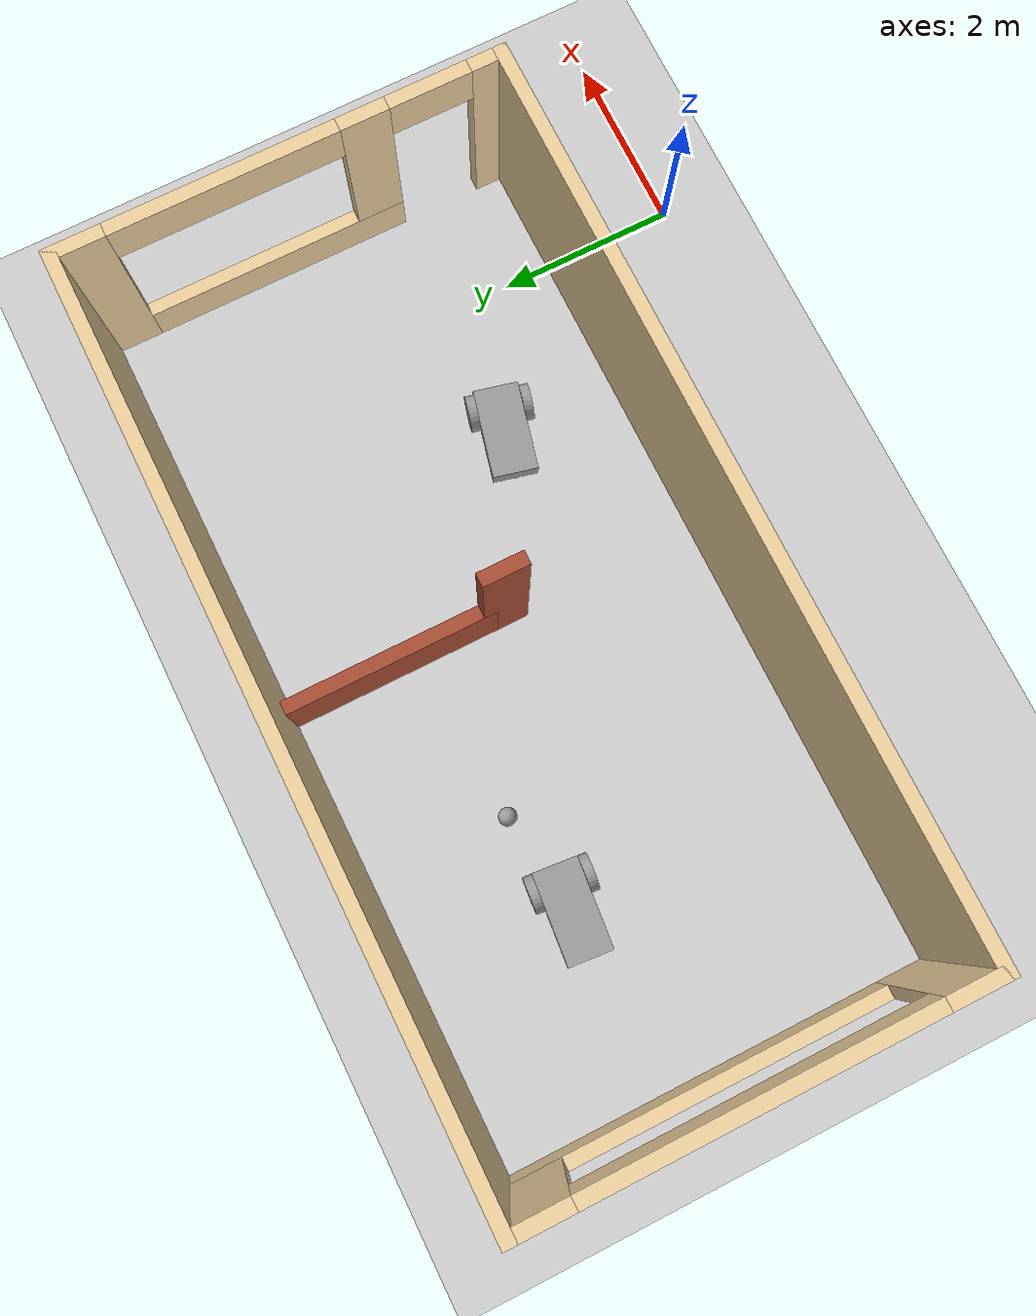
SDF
<sdf version="1.6">
 <world name="default">
  <plugin name="hello" filename="libhello.so"/>
  <light name="sun" type="directional">
   <pose>0 0 10 0 -0 0</pose>
   <diffuse>0.8 0.8 0.8 1</diffuse>
   <specular>0.2 0.2 0.2 1</specular>
   <attenuation>
    <range>1000</range>
    <constant>0.9</constant>
    <linear>0.01</linear>
    <quadratic>0.001</quadratic>
   </attenuation>
   <direction>-0.5 0.1 -0.9</direction>
  </light>
  <model name="ground_plane">
   <static>1</static>
   <link name="link">
    <collision name="collision">
     <geometry><plane><normal>0 0 1</normal><size>100 100</size></plane></geometry>
     <surface>
      <contact><collide_bitmask>65535</collide_bitmask></contact>
      <friction><ode><mu>100</mu><mu2>50</mu2></ode></friction>
     </surface>
    </collision>
    <visual name="visual">
     <cast_shadows>0</cast_shadows>
     <geometry><plane><normal>0 0 1</normal><size>100 100</size></plane></geometry>
     <material>
      <script><uri>file://media/materials/scripts/gazebo.material</uri><name>Gazebo/Grey</name></script>
     </material>
    </visual>
   </link>
  </model>
  <gravity>0 0 -9.8</gravity>
  <magnetic_field>6e-06 2.3e-05 -4.2e-05</magnetic_field>
  <atmosphere type="adiabatic"/>
  <physics name="default_physics" default="0" type="ode">
   <max_step_size>0.001</max_step_size>
   <real_time_factor>1</real_time_factor>
   <real_time_update_rate>1000</real_time_update_rate>
  </physics>
  <scene><ambient>0.4 0.4 0.4 1</ambient><background>0.7 0.7 0.7 1</background><shadows>1</shadows></scene>
  <spherical_coordinates>
   <surface_model>EARTH_WGS84</surface_model>
   <latitude_deg>0</latitude_deg>
   <longitude_deg>0</longitude_deg>
   <elevation>0</elevation>
   <heading_deg>0</heading_deg>
  </spherical_coordinates>
  <model name="my_office">
   <pose>-3.61458 3.83942 0 0 -0 0</pose>
   <link name="Wall_10">
    <collision name="Wall_10_Collision">
     <geometry><box><size>2.5 0.15 1</size></box></geometry>
     <pose>0 0 0.5 0 -0 0</pose>
    </collision>
    <visual name="Wall_10_Visual">
     <pose>0 0 0.5 0 -0 0</pose>
     <geometry><box><size>2.5 0.15 1</size></box></geometry>
     <material>
      <script><uri>file://media/materials/scripts/gazebo.material</uri><name>Gazebo/Bricks</name></script>
      <ambient>0.760784 0.662745 0.627451 1</ambient>
     </material>
     <meta><layer>0</layer></meta>
    </visual>
    <pose>0.219958 1.24458 0 0 0 -1.5708</pose>
   </link>
   <link name="Wall_13">
    <collision name="Wall_13_Collision">
     <geometry><box><size>0.5 0.15 2.5</size></box></geometry>
     <pose>0 0 1.25 0 -0 0</pose>
    </collision>
    <visual name="Wall_13_Visual">
     <pose>0 0 1.25 0 -0 0</pose>
     <geometry><box><size>0.5 0.15 2.5</size></box></geometry>
     <material>
      <script><uri>file://media/materials/scripts/gazebo.material</uri><name>Gazebo/Bricks</name></script>
      <ambient>0.760784 0.662745 0.627451 1</ambient>
     </material>
     <meta><layer>0</layer></meta>
    </visual>
    <pose>0.219958 -0.105419 0 0 0 -1.5708</pose>
   </link>
   <link name="Wall_5">
    <collision name="Wall_5_Collision">
     <geometry><box><size>10 0.15 2.5</size></box></geometry>
     <pose>0 0 1.25 0 -0 0</pose>
    </collision>
    <visual name="Wall_5_Visual">
     <pose>0 0 1.25 0 -0 0</pose>
     <geometry><box><size>10 0.15 2.5</size></box></geometry>
     <material>
      <script><uri>file://media/materials/scripts/gazebo.material</uri><name>Gazebo/Grey</name></script>
      <ambient>0.921569 0.807843 0.615686 1</ambient>
     </material>
     <meta><layer>0</layer></meta>
    </visual>
    <pose>0 2.425 0 0 -0 0</pose>
   </link>
   <link name="Wall_6">
    <pose>4.925 0 0 0 0 -1.5708</pose>
    <visual name="Wall_6_Visual_0">
     <pose>-2.18029 0 1.25 0 -0 0</pose>
     <geometry><box><size>0.639419 0.15 2.5</size></box></geometry>
     <material>
      <script><uri>file://media/materials/scripts/gazebo.material</uri><name>Gazebo/Grey</name></script>
      <ambient>0.921569 0.807843 0.615686 1</ambient>
     </material>
     <meta><layer>0</layer></meta>
    </visual>
    <collision name="Wall_6_Collision_0">
     <geometry><box><size>0.639419 0.15 2.5</size></box></geometry>
     <pose>-2.18029 0 1.25 0 -0 0</pose>
    </collision>
    <visual name="Wall_6_Visual_1">
     <pose>2.28061 0 1.25 0 -0 0</pose>
     <geometry><box><size>0.438774 0.15 2.5</size></box></geometry>
     <material>
      <script><uri>file://media/materials/scripts/gazebo.material</uri><name>Gazebo/Grey</name></script>
      <ambient>0.921569 0.807843 0.615686 1</ambient>
     </material>
     <meta><layer>0</layer></meta>
    </visual>
    <collision name="Wall_6_Collision_1">
     <geometry><box><size>0.438774 0.15 2.5</size></box></geometry>
     <pose>2.28061 0 1.25 0 -0 0</pose>
    </collision>
    <visual name="Wall_6_Visual_2">
     <pose>-0.349677 0 0.25 0 -0 0</pose>
     <geometry><box><size>3.02181 0.15 0.5</size></box></geometry>
     <material>
      <script><uri>file://media/materials/scripts/gazebo.material</uri><name>Gazebo/Grey</name></script>
      <ambient>0.921569 0.807843 0.615686 1</ambient>
     </material>
     <meta><layer>0</layer></meta>
    </visual>
    <collision name="Wall_6_Collision_2">
     <geometry><box><size>3.02181 0.15 0.5</size></box></geometry>
     <pose>-0.349677 0 0.25 0 -0 0</pose>
    </collision>
    <visual name="Wall_6_Visual_3">
     <pose>0.894323 0 1.5 0 -0 0</pose>
     <geometry><box><size>0.533807 0.15 2</size></box></geometry>
     <material>
      <script><uri>file://media/materials/scripts/gazebo.material</uri><name>Gazebo/Grey</name></script>
      <ambient>0.921569 0.807843 0.615686 1</ambient>
     </material>
     <meta><layer>0</layer></meta>
    </visual>
    <collision name="Wall_6_Collision_3">
     <geometry><box><size>0.533807 0.15 2</size></box></geometry>
     <pose>0.894323 0 1.5 0 -0 0</pose>
    </collision>
    <visual name="Wall_6_Visual_4">
     <pose>-0.616581 0 2.25 0 -0 0</pose>
     <geometry><box><size>2.488 0.15 0.5</size></box></geometry>
     <material>
      <script><uri>file://media/materials/scripts/gazebo.material</uri><name>Gazebo/Grey</name></script>
      <ambient>0.921569 0.807843 0.615686 1</ambient>
     </material>
     <meta><layer>0</layer></meta>
    </visual>
    <collision name="Wall_6_Collision_4">
     <geometry><box><size>2.488 0.15 0.5</size></box></geometry>
     <pose>-0.616581 0 2.25 0 -0 0</pose>
    </collision>
    <visual name="Wall_6_Visual_5">
     <pose>1.61123 0 2.25 0 -0 0</pose>
     <geometry><box><size>0.9 0.15 0.5</size></box></geometry>
     <material>
      <script><uri>file://media/materials/scripts/gazebo.material</uri><name>Gazebo/Grey</name></script>
      <ambient>0.921569 0.807843 0.615686 1</ambient>
     </material>
     <meta><layer>0</layer></meta>
    </visual>
    <collision name="Wall_6_Collision_5">
     <geometry><box><size>0.9 0.15 0.5</size></box></geometry>
     <pose>1.61123 0 2.25 0 -0 0</pose>
    </collision>
   </link>
   <link name="Wall_7">
    <collision name="Wall_7_Collision">
     <geometry><box><size>10 0.15 2.5</size></box></geometry>
     <pose>0 0 1.25 0 -0 0</pose>
    </collision>
    <visual name="Wall_7_Visual">
     <pose>0 0 1.25 0 -0 0</pose>
     <geometry><box><size>10 0.15 2.5</size></box></geometry>
     <material>
      <script><uri>file://media/materials/scripts/gazebo.material</uri><name>Gazebo/Grey</name></script>
      <ambient>0.921569 0.807843 0.615686 1</ambient>
     </material>
     <meta><layer>0</layer></meta>
    </visual>
    <pose>0 -2.425 0 0 -0 3.14159</pose>
   </link>
   <link name="Wall_8">
    <pose>-4.925 0 0 0 -0 1.5708</pose>
    <visual name="Wall_8_Visual_0">
     <pose>-2.16446 0 1.25 0 -0 0</pose>
     <geometry><box><size>0.671088 0.15 2.5</size></box></geometry>
     <material>
      <script><uri>file://media/materials/scripts/gazebo.material</uri><name>Gazebo/Grey</name></script>
      <ambient>0.921569 0.807843 0.615686 1</ambient>
     </material>
     <meta><layer>0</layer></meta>
    </visual>
    <collision name="Wall_8_Collision_0">
     <geometry><box><size>0.671088 0.15 2.5</size></box></geometry>
     <pose>-2.16446 0 1.25 0 -0 0</pose>
    </collision>
    <visual name="Wall_8_Visual_1">
     <pose>0.335544 0 0.25 0 -0 0</pose>
     <geometry><box><size>4.32891 0.15 0.5</size></box></geometry>
     <material>
      <script><uri>file://media/materials/scripts/gazebo.material</uri><name>Gazebo/Grey</name></script>
      <ambient>0.921569 0.807843 0.615686 1</ambient>
     </material>
     <meta><layer>0</layer></meta>
    </visual>
    <collision name="Wall_8_Collision_1">
     <geometry><box><size>4.32891 0.15 0.5</size></box></geometry>
     <pose>0.335544 0 0.25 0 -0 0</pose>
    </collision>
    <visual name="Wall_8_Visual_2">
     <pose>2.14254 0 1.5 0 -0 0</pose>
     <geometry><box><size>0.714912 0.15 2</size></box></geometry>
     <material>
      <script><uri>file://media/materials/scripts/gazebo.material</uri><name>Gazebo/Grey</name></script>
      <ambient>0.921569 0.807843 0.615686 1</ambient>
     </material>
     <meta><layer>0</layer></meta>
    </visual>
    <collision name="Wall_8_Collision_2">
     <geometry><box><size>0.714912 0.15 2</size></box></geometry>
     <pose>2.14254 0 1.5 0 -0 0</pose>
    </collision>
    <visual name="Wall_8_Visual_3">
     <pose>-0.021912 0 2.25 0 -0 0</pose>
     <geometry><box><size>3.614 0.15 0.5</size></box></geometry>
     <material>
      <script><uri>file://media/materials/scripts/gazebo.material</uri><name>Gazebo/Grey</name></script>
      <ambient>0.921569 0.807843 0.615686 1</ambient>
     </material>
     <meta><layer>0</layer></meta>
    </visual>
    <collision name="Wall_8_Collision_3">
     <geometry><box><size>3.614 0.15 0.5</size></box></geometry>
     <pose>-0.021912 0 2.25 0 -0 0</pose>
    </collision>
   </link>
   <static>1</static>
  </model>
  <model name="my_vehicle">
   <link name="link_0">
    <pose>-0.0625 -0 0.05 0 -0 0</pose>
    <inertial>
     <mass>1</mass>
     <inertia>
      <ixx>0.166667</ixx>
      <ixy>0</ixy>
      <ixz>0</ixz>
      <iyy>0.166667</iyy>
      <iyz>0</iyz>
      <izz>0.166667</izz>
     </inertia>
    </inertial>
    <visual name="visual">
     <geometry><box><size>1 0.5 0.2</size></box></geometry>
     <material>
      <lighting>1</lighting>
      <script><uri>file://media/materials/scripts/gazebo.material</uri><name>Gazebo/Grey</name></script>
      <shader type="pixel"><normal_map>__default__</normal_map></shader>
      <ambient>0.3 0.3 0.3 1</ambient>
      <diffuse>0.7 0.7 0.7 1</diffuse>
      <specular>0.01 0.01 0.01 1</specular>
      <emissive>0 0 0 1</emissive>
     </material>
    </visual>
    <collision name="collision">
     <geometry><box><size>1 0.5 0.2</size></box></geometry>
     <surface>
      <friction>
       <ode><mu>1</mu><mu2>1</mu2><fdir1>0 0 0</fdir1><slip1>0</slip1><slip2>0</slip2></ode>
       <torsional>
        <coefficient>1</coefficient>
        <patch_radius>0</patch_radius>
        <surface_radius>0</surface_radius>
        <use_patch_radius>1</use_patch_radius>
        <ode><slip>0</slip></ode>
       </torsional>
      </friction>
      <bounce><restitution_coefficient>0</restitution_coefficient><threshold>1e+06</threshold></bounce>
      <contact>
       <collide_without_contact>0</collide_without_contact>
       <collide_without_contact_bitmask>1</collide_without_contact_bitmask>
       <collide_bitmask>1</collide_bitmask>
       <ode>
        <soft_cfm>0</soft_cfm>
        <soft_erp>0.2</soft_erp>
        <kp>1e+13</kp>
        <kd>1</kd>
        <max_vel>0.01</max_vel>
        <min_depth>0</min_depth>
       </ode>
       <bullet>
        <split_impulse>1</split_impulse>
        <split_impulse_penetration_threshold>-0.01</split_impulse_penetration_threshold>
        <soft_cfm>0</soft_cfm>
        <soft_erp>0.2</soft_erp>
        <kp>1e+13</kp>
        <kd>1</kd>
       </bullet>
      </contact>
     </surface>
    </collision>
   </link>
   <link name="link_1_clone">
    <pose>0.2375 0.30066 0 0 -0 0</pose>
    <inertial>
     <mass>1</mass>
     <inertia><ixx>0.145833</ixx><ixy>0</ixy><ixz>0</ixz><iyy>0.145833</iyy><iyz>0</iyz><izz>0.125</izz></inertia>
    </inertial>
    <visual name="visual">
     <pose>0 0 0 1.573 -0 0</pose>
     <geometry><cylinder><radius>0.2</radius><length>0.1</length></cylinder></geometry>
     <material>
      <lighting>1</lighting>
      <script><uri>file://media/materials/scripts/gazebo.material</uri><name>Gazebo/Grey</name></script>
      <shader type="pixel"><normal_map>__default__</normal_map></shader>
      <ambient>0.3 0.3 0.3 1</ambient>
      <diffuse>0.7 0.7 0.7 1</diffuse>
      <specular>0.01 0.01 0.01 1</specular>
      <emissive>0 0 0 1</emissive>
     </material>
    </visual>
    <collision name="collision">
     <pose>0 0 0 1.573 -0 0</pose>
     <geometry><cylinder><radius>0.2</radius><length>0.1</length></cylinder></geometry>
     <surface>
      <friction>
       <ode><mu>1</mu><mu2>1</mu2><fdir1>0 0 0</fdir1><slip1>0</slip1><slip2>0</slip2></ode>
       <torsional>
        <coefficient>1</coefficient>
        <patch_radius>0</patch_radius>
        <surface_radius>0</surface_radius>
        <use_patch_radius>1</use_patch_radius>
        <ode><slip>0</slip></ode>
       </torsional>
      </friction>
      <bounce><restitution_coefficient>0</restitution_coefficient><threshold>1e+06</threshold></bounce>
      <contact>
       <collide_without_contact>0</collide_without_contact>
       <collide_without_contact_bitmask>1</collide_without_contact_bitmask>
       <collide_bitmask>1</collide_bitmask>
       <ode>
        <soft_cfm>0</soft_cfm>
        <soft_erp>0.2</soft_erp>
        <kp>1e+13</kp>
        <kd>1</kd>
        <max_vel>0.01</max_vel>
        <min_depth>0</min_depth>
       </ode>
       <bullet>
        <split_impulse>1</split_impulse>
        <split_impulse_penetration_threshold>-0.01</split_impulse_penetration_threshold>
        <soft_cfm>0</soft_cfm>
        <soft_erp>0.2</soft_erp>
        <kp>1e+13</kp>
        <kd>1</kd>
       </bullet>
      </contact>
     </surface>
    </collision>
   </link>
   <link name="link_1_clone_clone">
    <pose>0.2375 -0.30066 0 0 -0 0</pose>
    <inertial>
     <mass>1</mass>
     <inertia><ixx>0.145833</ixx><ixy>0</ixy><ixz>0</ixz><iyy>0.145833</iyy><iyz>0</iyz><izz>0.125</izz></inertia>
    </inertial>
    <visual name="visual">
     <pose>0 0 0 1.573 -0 0</pose>
     <geometry><cylinder><radius>0.2</radius><length>0.1</length></cylinder></geometry>
     <material>
      <lighting>1</lighting>
      <script><uri>file://media/materials/scripts/gazebo.material</uri><name>Gazebo/Grey</name></script>
      <shader type="pixel"><normal_map>__default__</normal_map></shader>
      <ambient>0.3 0.3 0.3 1</ambient>
      <diffuse>0.7 0.7 0.7 1</diffuse>
      <specular>0.01 0.01 0.01 1</specular>
      <emissive>0 0 0 1</emissive>
     </material>
    </visual>
    <collision name="collision">
     <pose>0 0 0 1.573 -0 0</pose>
     <geometry><cylinder><radius>0.2</radius><length>0.1</length></cylinder></geometry>
     <surface>
      <friction>
       <ode><mu>1</mu><mu2>1</mu2><fdir1>0 0 0</fdir1><slip1>0</slip1><slip2>0</slip2></ode>
       <torsional>
        <coefficient>1</coefficient>
        <patch_radius>0</patch_radius>
        <surface_radius>0</surface_radius>
        <use_patch_radius>1</use_patch_radius>
        <ode><slip>0</slip></ode>
       </torsional>
      </friction>
      <bounce><restitution_coefficient>0</restitution_coefficient><threshold>1e+06</threshold></bounce>
      <contact>
       <collide_without_contact>0</collide_without_contact>
       <collide_without_contact_bitmask>1</collide_without_contact_bitmask>
       <collide_bitmask>1</collide_bitmask>
       <ode>
        <soft_cfm>0</soft_cfm>
        <soft_erp>0.2</soft_erp>
        <kp>1e+13</kp>
        <kd>1</kd>
        <max_vel>0.01</max_vel>
        <min_depth>0</min_depth>
       </ode>
       <bullet>
        <split_impulse>1</split_impulse>
        <split_impulse_penetration_threshold>-0.01</split_impulse_penetration_threshold>
        <soft_cfm>0</soft_cfm>
        <soft_erp>0.2</soft_erp>
        <kp>1e+13</kp>
        <kd>1</kd>
       </bullet>
      </contact>
     </surface>
    </collision>
   </link>
   <link name="link_3">
    <pose>-0.4125 -0 -0.05 0 -0 0</pose>
    <inertial>
     <mass>1</mass>
     <inertia><ixx>0.1</ixx><ixy>0</ixy><ixz>0</ixz><iyy>0.1</iyy><iyz>0</iyz><izz>0.1</izz></inertia>
    </inertial>
    <visual name="visual">
     <geometry><sphere><radius>0.15</radius></sphere></geometry>
     <material>
      <lighting>1</lighting>
      <script><uri>file://media/materials/scripts/gazebo.material</uri><name>Gazebo/Grey</name></script>
      <shader type="pixel"><normal_map>__default__</normal_map></shader>
      <ambient>0.3 0.3 0.3 1</ambient>
      <diffuse>0.7 0.7 0.7 1</diffuse>
      <specular>0.01 0.01 0.01 1</specular>
      <emissive>0 0 0 1</emissive>
     </material>
    </visual>
    <collision name="collision">
     <geometry><sphere><radius>0.15</radius></sphere></geometry>
     <surface>
      <friction>
       <ode><mu>1</mu><mu2>1</mu2><fdir1>0 0 0</fdir1><slip1>0</slip1><slip2>0</slip2></ode>
       <torsional>
        <coefficient>1</coefficient>
        <patch_radius>0</patch_radius>
        <surface_radius>0</surface_radius>
        <use_patch_radius>1</use_patch_radius>
        <ode><slip>0</slip></ode>
       </torsional>
      </friction>
      <bounce><restitution_coefficient>0</restitution_coefficient><threshold>1e+06</threshold></bounce>
      <contact>
       <collide_without_contact>0</collide_without_contact>
       <collide_without_contact_bitmask>1</collide_without_contact_bitmask>
       <collide_bitmask>1</collide_bitmask>
       <ode>
        <soft_cfm>0</soft_cfm>
        <soft_erp>0.2</soft_erp>
        <kp>1e+13</kp>
        <kd>1</kd>
        <max_vel>0.01</max_vel>
        <min_depth>0</min_depth>
       </ode>
       <bullet>
        <split_impulse>1</split_impulse>
        <split_impulse_penetration_threshold>-0.01</split_impulse_penetration_threshold>
        <soft_cfm>0</soft_cfm>
        <soft_erp>0.2</soft_erp>
        <kp>1e+13</kp>
        <kd>1</kd>
       </bullet>
      </contact>
     </surface>
    </collision>
   </link>
   <joint name="link_0_JOINT_1" type="revolute">
    <parent>link_0</parent>
    <child>link_1_clone</child>
    <axis>
     <xyz>0 1 0</xyz>
     <use_parent_model_frame>0</use_parent_model_frame>
     <limit>
      <lower>-1.79769e+308</lower>
      <upper>1.79769e+308</upper>
      <effort>-1</effort>
      <velocity>-1</velocity>
     </limit>
     <dynamics>
      <spring_reference>0</spring_reference>
      <spring_stiffness>0</spring_stiffness>
      <damping>0</damping>
     </dynamics>
    </axis>
    <physics>
     <ode><limit><cfm>0</cfm><erp>0.2</erp></limit><suspension><cfm>0</cfm><erp>0.2</erp></suspension></ode>
    </physics>
   </joint>
   <joint name="link_0_JOINT_2" type="revolute">
    <parent>link_0</parent>
    <child>link_1_clone_clone</child>
    <axis>
     <xyz>0 1 0</xyz>
     <use_parent_model_frame>0</use_parent_model_frame>
     <limit>
      <lower>-1.79769e+308</lower>
      <upper>1.79769e+308</upper>
      <effort>-1</effort>
      <velocity>-1</velocity>
     </limit>
     <dynamics>
      <spring_reference>0</spring_reference>
      <spring_stiffness>0</spring_stiffness>
      <damping>0</damping>
     </dynamics>
    </axis>
    <physics>
     <ode><limit><cfm>0</cfm><erp>0.2</erp></limit><suspension><cfm>0</cfm><erp>0.2</erp></suspension></ode>
    </physics>
   </joint>
   <joint name="link_0_JOINT_3" type="ball">
    <parent>link_0</parent>
    <child>link_3</child>
    <physics>
     <ode><limit><cfm>0</cfm><erp>0.2</erp></limit><suspension><cfm>0</cfm><erp>0.2</erp></suspension></ode>
    </physics>
   </joint>
   <static>0</static>
   <pose>-1.52829 2.79939 0.200064 2.7e-05 -0.000155 -0.23553</pose>
  </model>
  <model name="my_vehicle_0">
   <link name="link_0">
    <pose>-0.0625 -0 0.05 0 -0 0</pose>
    <inertial>
     <mass>1</mass>
     <inertia>
      <ixx>0.166667</ixx>
      <ixy>0</ixy>
      <ixz>0</ixz>
      <iyy>0.166667</iyy>
      <iyz>0</iyz>
      <izz>0.166667</izz>
     </inertia>
    </inertial>
    <visual name="visual">
     <geometry><box><size>1 0.5 0.2</size></box></geometry>
     <material>
      <lighting>1</lighting>
      <script><uri>file://media/materials/scripts/gazebo.material</uri><name>Gazebo/Grey</name></script>
      <shader type="pixel"><normal_map>__default__</normal_map></shader>
      <ambient>0.3 0.3 0.3 1</ambient>
      <diffuse>0.7 0.7 0.7 1</diffuse>
      <specular>0.01 0.01 0.01 1</specular>
      <emissive>0 0 0 1</emissive>
     </material>
    </visual>
    <collision name="collision">
     <geometry><box><size>1 0.5 0.2</size></box></geometry>
     <surface>
      <friction>
       <ode><mu>1</mu><mu2>1</mu2><fdir1>0 0 0</fdir1><slip1>0</slip1><slip2>0</slip2></ode>
       <torsional>
        <coefficient>1</coefficient>
        <patch_radius>0</patch_radius>
        <surface_radius>0</surface_radius>
        <use_patch_radius>1</use_patch_radius>
        <ode><slip>0</slip></ode>
       </torsional>
      </friction>
      <bounce><restitution_coefficient>0</restitution_coefficient><threshold>1e+06</threshold></bounce>
      <contact>
       <collide_without_contact>0</collide_without_contact>
       <collide_without_contact_bitmask>1</collide_without_contact_bitmask>
       <collide_bitmask>1</collide_bitmask>
       <ode>
        <soft_cfm>0</soft_cfm>
        <soft_erp>0.2</soft_erp>
        <kp>1e+13</kp>
        <kd>1</kd>
        <max_vel>0.01</max_vel>
        <min_depth>0</min_depth>
       </ode>
       <bullet>
        <split_impulse>1</split_impulse>
        <split_impulse_penetration_threshold>-0.01</split_impulse_penetration_threshold>
        <soft_cfm>0</soft_cfm>
        <soft_erp>0.2</soft_erp>
        <kp>1e+13</kp>
        <kd>1</kd>
       </bullet>
      </contact>
     </surface>
    </collision>
   </link>
   <link name="link_1_clone">
    <pose>0.2375 0.30066 0 0 -0 0</pose>
    <inertial>
     <mass>1</mass>
     <inertia><ixx>0.145833</ixx><ixy>0</ixy><ixz>0</ixz><iyy>0.145833</iyy><iyz>0</iyz><izz>0.125</izz></inertia>
    </inertial>
    <visual name="visual">
     <pose>0 0 0 1.573 -0 0</pose>
     <geometry><cylinder><radius>0.2</radius><length>0.1</length></cylinder></geometry>
     <material>
      <lighting>1</lighting>
      <script><uri>file://media/materials/scripts/gazebo.material</uri><name>Gazebo/Grey</name></script>
      <shader type="pixel"><normal_map>__default__</normal_map></shader>
      <ambient>0.3 0.3 0.3 1</ambient>
      <diffuse>0.7 0.7 0.7 1</diffuse>
      <specular>0.01 0.01 0.01 1</specular>
      <emissive>0 0 0 1</emissive>
     </material>
    </visual>
    <collision name="collision">
     <pose>0 0 0 1.573 -0 0</pose>
     <geometry><cylinder><radius>0.2</radius><length>0.1</length></cylinder></geometry>
     <surface>
      <friction>
       <ode><mu>1</mu><mu2>1</mu2><fdir1>0 0 0</fdir1><slip1>0</slip1><slip2>0</slip2></ode>
       <torsional>
        <coefficient>1</coefficient>
        <patch_radius>0</patch_radius>
        <surface_radius>0</surface_radius>
        <use_patch_radius>1</use_patch_radius>
        <ode><slip>0</slip></ode>
       </torsional>
      </friction>
      <bounce><restitution_coefficient>0</restitution_coefficient><threshold>1e+06</threshold></bounce>
      <contact>
       <collide_without_contact>0</collide_without_contact>
       <collide_without_contact_bitmask>1</collide_without_contact_bitmask>
       <collide_bitmask>1</collide_bitmask>
       <ode>
        <soft_cfm>0</soft_cfm>
        <soft_erp>0.2</soft_erp>
        <kp>1e+13</kp>
        <kd>1</kd>
        <max_vel>0.01</max_vel>
        <min_depth>0</min_depth>
       </ode>
       <bullet>
        <split_impulse>1</split_impulse>
        <split_impulse_penetration_threshold>-0.01</split_impulse_penetration_threshold>
        <soft_cfm>0</soft_cfm>
        <soft_erp>0.2</soft_erp>
        <kp>1e+13</kp>
        <kd>1</kd>
       </bullet>
      </contact>
     </surface>
    </collision>
   </link>
   <link name="link_1_clone_clone">
    <pose>0.2375 -0.30066 0 0 -0 0</pose>
    <inertial>
     <mass>1</mass>
     <inertia><ixx>0.145833</ixx><ixy>0</ixy><ixz>0</ixz><iyy>0.145833</iyy><iyz>0</iyz><izz>0.125</izz></inertia>
    </inertial>
    <visual name="visual">
     <pose>0 0 0 1.573 -0 0</pose>
     <geometry><cylinder><radius>0.2</radius><length>0.1</length></cylinder></geometry>
     <material>
      <lighting>1</lighting>
      <script><uri>file://media/materials/scripts/gazebo.material</uri><name>Gazebo/Grey</name></script>
      <shader type="pixel"><normal_map>__default__</normal_map></shader>
      <ambient>0.3 0.3 0.3 1</ambient>
      <diffuse>0.7 0.7 0.7 1</diffuse>
      <specular>0.01 0.01 0.01 1</specular>
      <emissive>0 0 0 1</emissive>
     </material>
    </visual>
    <collision name="collision">
     <pose>0 0 0 1.573 -0 0</pose>
     <geometry><cylinder><radius>0.2</radius><length>0.1</length></cylinder></geometry>
     <surface>
      <friction>
       <ode><mu>1</mu><mu2>1</mu2><fdir1>0 0 0</fdir1><slip1>0</slip1><slip2>0</slip2></ode>
       <torsional>
        <coefficient>1</coefficient>
        <patch_radius>0</patch_radius>
        <surface_radius>0</surface_radius>
        <use_patch_radius>1</use_patch_radius>
        <ode><slip>0</slip></ode>
       </torsional>
      </friction>
      <bounce><restitution_coefficient>0</restitution_coefficient><threshold>1e+06</threshold></bounce>
      <contact>
       <collide_without_contact>0</collide_without_contact>
       <collide_without_contact_bitmask>1</collide_without_contact_bitmask>
       <collide_bitmask>1</collide_bitmask>
       <ode>
        <soft_cfm>0</soft_cfm>
        <soft_erp>0.2</soft_erp>
        <kp>1e+13</kp>
        <kd>1</kd>
        <max_vel>0.01</max_vel>
        <min_depth>0</min_depth>
       </ode>
       <bullet>
        <split_impulse>1</split_impulse>
        <split_impulse_penetration_threshold>-0.01</split_impulse_penetration_threshold>
        <soft_cfm>0</soft_cfm>
        <soft_erp>0.2</soft_erp>
        <kp>1e+13</kp>
        <kd>1</kd>
       </bullet>
      </contact>
     </surface>
    </collision>
   </link>
   <link name="link_3">
    <pose>-0.4125 -0 -0.05 0 -0 0</pose>
    <inertial>
     <mass>1</mass>
     <inertia><ixx>0.1</ixx><ixy>0</ixy><ixz>0</ixz><iyy>0.1</iyy><iyz>0</iyz><izz>0.1</izz></inertia>
    </inertial>
    <visual name="visual">
     <geometry><sphere><radius>0.15</radius></sphere></geometry>
     <material>
      <lighting>1</lighting>
      <script><uri>file://media/materials/scripts/gazebo.material</uri><name>Gazebo/Grey</name></script>
      <shader type="pixel"><normal_map>__default__</normal_map></shader>
      <ambient>0.3 0.3 0.3 1</ambient>
      <diffuse>0.7 0.7 0.7 1</diffuse>
      <specular>0.01 0.01 0.01 1</specular>
      <emissive>0 0 0 1</emissive>
     </material>
    </visual>
    <collision name="collision">
     <geometry><sphere><radius>0.15</radius></sphere></geometry>
     <surface>
      <friction>
       <ode><mu>1</mu><mu2>1</mu2><fdir1>0 0 0</fdir1><slip1>0</slip1><slip2>0</slip2></ode>
       <torsional>
        <coefficient>1</coefficient>
        <patch_radius>0</patch_radius>
        <surface_radius>0</surface_radius>
        <use_patch_radius>1</use_patch_radius>
        <ode><slip>0</slip></ode>
       </torsional>
      </friction>
      <bounce><restitution_coefficient>0</restitution_coefficient><threshold>1e+06</threshold></bounce>
      <contact>
       <collide_without_contact>0</collide_without_contact>
       <collide_without_contact_bitmask>1</collide_without_contact_bitmask>
       <collide_bitmask>1</collide_bitmask>
       <ode>
        <soft_cfm>0</soft_cfm>
        <soft_erp>0.2</soft_erp>
        <kp>1e+13</kp>
        <kd>1</kd>
        <max_vel>0.01</max_vel>
        <min_depth>0</min_depth>
       </ode>
       <bullet>
        <split_impulse>1</split_impulse>
        <split_impulse_penetration_threshold>-0.01</split_impulse_penetration_threshold>
        <soft_cfm>0</soft_cfm>
        <soft_erp>0.2</soft_erp>
        <kp>1e+13</kp>
        <kd>1</kd>
       </bullet>
      </contact>
     </surface>
    </collision>
   </link>
   <joint name="link_0_JOINT_1" type="revolute">
    <parent>link_0</parent>
    <child>link_1_clone</child>
    <axis>
     <xyz>0 1 0</xyz>
     <use_parent_model_frame>0</use_parent_model_frame>
     <limit>
      <lower>-1.79769e+308</lower>
      <upper>1.79769e+308</upper>
      <effort>-1</effort>
      <velocity>-1</velocity>
     </limit>
     <dynamics>
      <spring_reference>0</spring_reference>
      <spring_stiffness>0</spring_stiffness>
      <damping>0</damping>
     </dynamics>
    </axis>
    <physics>
     <ode><limit><cfm>0</cfm><erp>0.2</erp></limit><suspension><cfm>0</cfm><erp>0.2</erp></suspension></ode>
    </physics>
   </joint>
   <joint name="link_0_JOINT_2" type="revolute">
    <parent>link_0</parent>
    <child>link_1_clone_clone</child>
    <axis>
     <xyz>0 1 0</xyz>
     <use_parent_model_frame>0</use_parent_model_frame>
     <limit>
      <lower>-1.79769e+308</lower>
      <upper>1.79769e+308</upper>
      <effort>-1</effort>
      <velocity>-1</velocity>
     </limit>
     <dynamics>
      <spring_reference>0</spring_reference>
      <spring_stiffness>0</spring_stiffness>
      <damping>0</damping>
     </dynamics>
    </axis>
    <physics>
     <ode><limit><cfm>0</cfm><erp>0.2</erp></limit><suspension><cfm>0</cfm><erp>0.2</erp></suspension></ode>
    </physics>
   </joint>
   <joint name="link_0_JOINT_3" type="ball">
    <parent>link_0</parent>
    <child>link_3</child>
    <physics>
     <ode><limit><cfm>0</cfm><erp>0.2</erp></limit><suspension><cfm>0</cfm><erp>0.2</erp></suspension></ode>
    </physics>
   </joint>
   <static>0</static>
   <pose>-6.38753 4.46661 0.200068 6e-06 -0.000166 -0.086825</pose>
  </model>
  <model name="my_ball">
   <link name="link_0">
    <inertial>
     <mass>1</mass>
     <inertia><ixx>0.1</ixx><ixy>0</ixy><ixz>0</ixz><iyy>0.1</iyy><iyz>0</iyz><izz>0.1</izz></inertia>
    </inertial>
    <visual name="visual">
     <geometry><sphere><radius>0.1</radius></sphere></geometry>
     <material>
      <lighting>1</lighting>
      <script><uri>file://media/materials/scripts/gazebo.material</uri><name>Gazebo/Grey</name></script>
      <ambient>1 1 1 1</ambient>
      <diffuse>1 1 1 1</diffuse>
      <specular>1 1 1 1</specular>
      <emissive>1 1 1 1</emissive>
      <shader type="vertex"><normal_map>__default__</normal_map></shader>
     </material>
    </visual>
    <collision name="collision">
     <geometry><sphere><radius>0.1</radius></sphere></geometry>
     <surface>
      <friction>
       <ode><mu>1</mu><mu2>1</mu2><fdir1>0 0 0</fdir1><slip1>0</slip1><slip2>0</slip2></ode>
       <torsional>
        <coefficient>1</coefficient>
        <patch_radius>0</patch_radius>
        <surface_radius>0</surface_radius>
        <use_patch_radius>1</use_patch_radius>
        <ode><slip>0</slip></ode>
       </torsional>
      </friction>
      <bounce><restitution_coefficient>0</restitution_coefficient><threshold>1e+06</threshold></bounce>
      <contact>
       <collide_without_contact>0</collide_without_contact>
       <collide_without_contact_bitmask>1</collide_without_contact_bitmask>
       <collide_bitmask>1</collide_bitmask>
       <ode>
        <soft_cfm>0</soft_cfm>
        <soft_erp>0.2</soft_erp>
        <kp>1e+13</kp>
        <kd>1</kd>
        <max_vel>0.01</max_vel>
        <min_depth>0</min_depth>
       </ode>
       <bullet>
        <split_impulse>1</split_impulse>
        <split_impulse_penetration_threshold>-0.01</split_impulse_penetration_threshold>
        <soft_cfm>0</soft_cfm>
        <soft_erp>0.2</soft_erp>
        <kp>1e+13</kp>
        <kd>1</kd>
       </bullet>
      </contact>
     </surface>
    </collision>
   </link>
   <static>0</static>
   <pose>-5.29829 4.63008 0.1 0 -0 0</pose>
  </model>
 </world>
</sdf>
